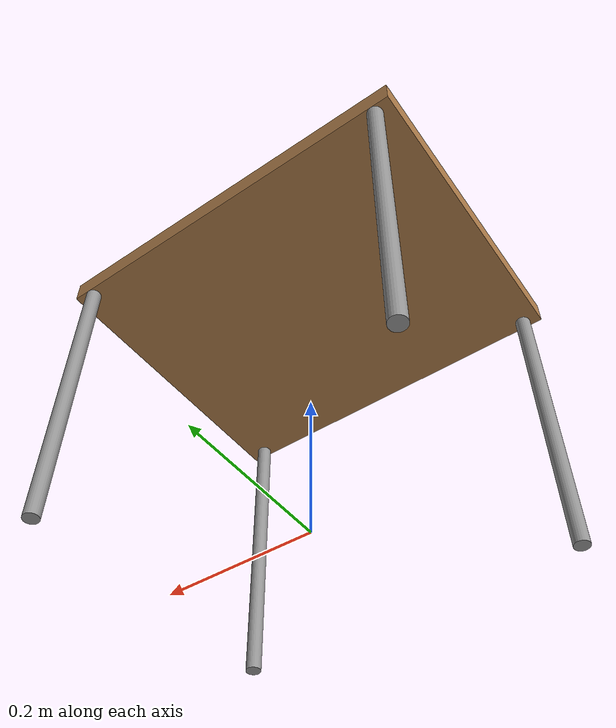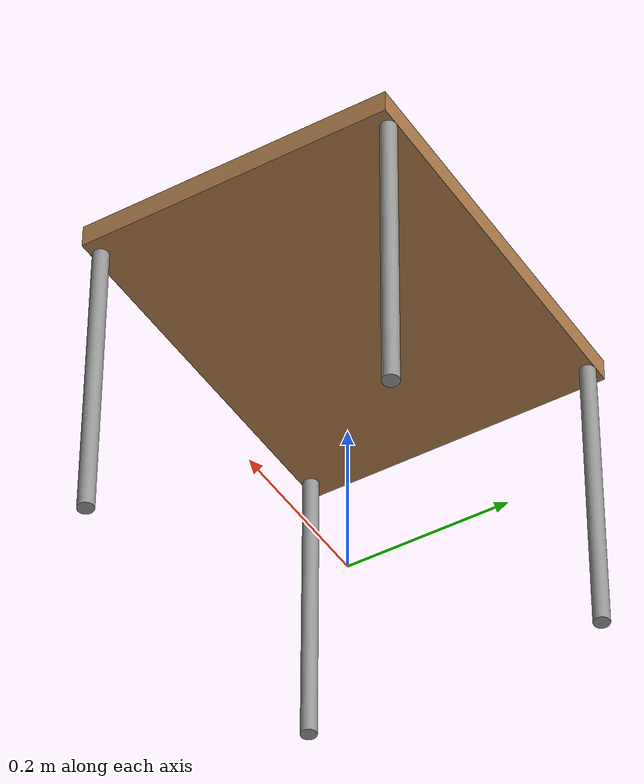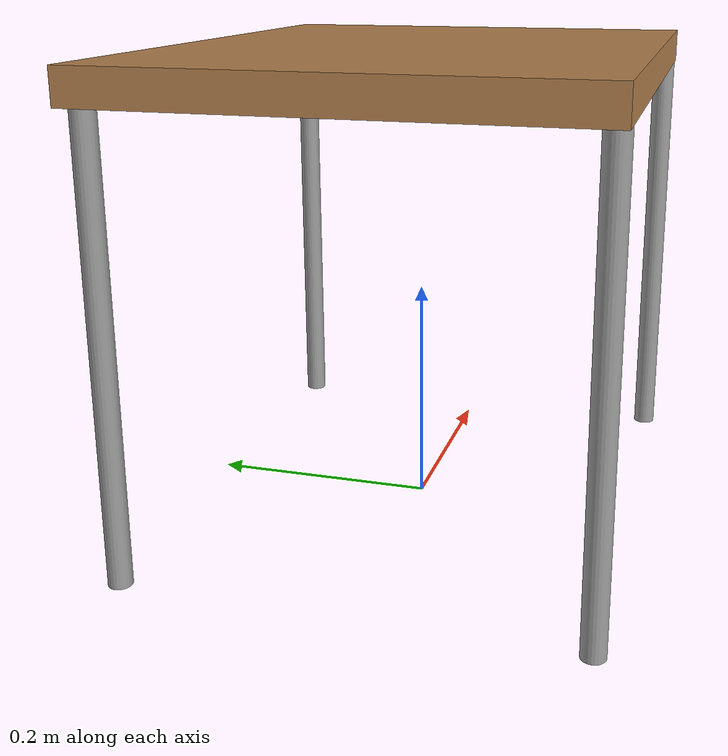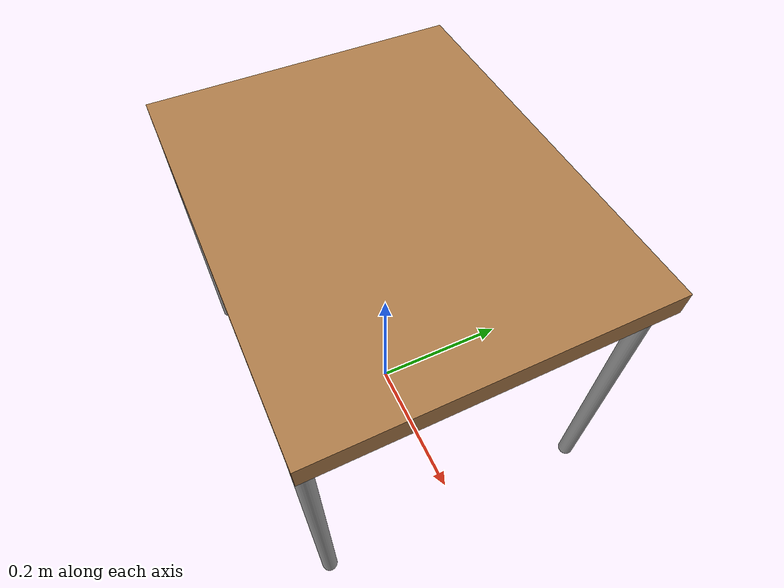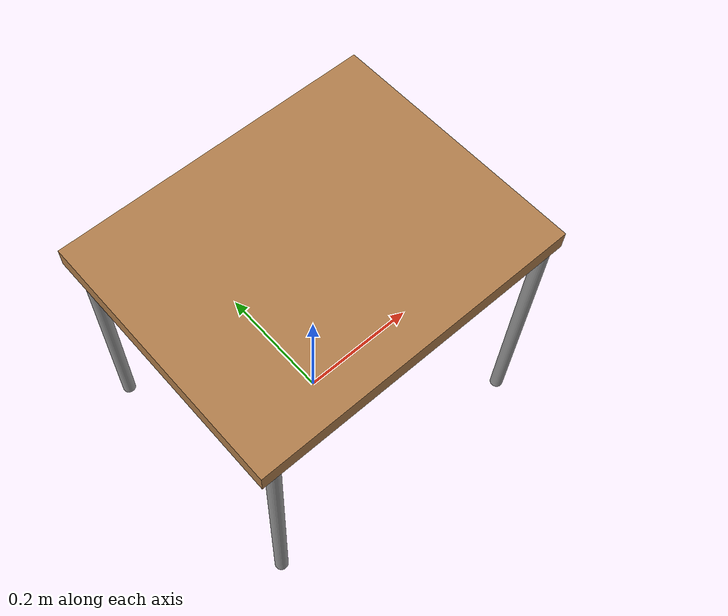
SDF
<?xml version="1.0" ?>
<sdf version="1.5">
  <model name="table_modif">
    <static>true</static>
    <link name="link">
      <collision name="surface">
        <pose>0 0 0.4 0 0 0</pose>
        <geometry>
          <box>
            <size>0.5 0.4 0.03</size>
          </box>
        </geometry>
        <surface>
          <friction>
            <ode>
              <mu>0.6</mu>
              <mu2>0.6</mu2>
            </ode>
          </friction>
        </surface>
      </collision>
      <visual name="visual1">
        <pose>0 0 0.4 0 0 0</pose>
        <geometry>
          <box>
            <size>0.5 0.4 0.03</size>
          </box>
        </geometry>
        <material>
          <script>
            <uri>file://media/materials/scripts/gazebo.material</uri>
            <name>Gazebo/Wood</name>
          </script>
        </material>
      </visual>
      <collision name="front_left_leg">
        <pose>0.2265 0.19 0.2 0 0 0</pose>
        <geometry>
          <cylinder>
            <radius>0.01</radius>
            <length>0.4</length>
          </cylinder>
        </geometry>
      </collision>
      <visual name="front_left_leg">
        <pose>0.2265 0.19 0.2 0 0 0</pose>
        <geometry>
          <cylinder>
            <radius>0.01</radius>
            <length>0.4</length>
          </cylinder>
        </geometry>
        <material>
          <script>
            <uri>file://media/materials/scripts/gazebo.material</uri>
            <name>Gazebo/Grey</name>
          </script>
        </material>
      </visual>
      <collision name="front_right_leg">
        <pose>0.2265 -0.19 0.2 0 0 0</pose>
        <geometry>
          <cylinder>
            <radius>0.01</radius>
            <length>0.4</length>
          </cylinder>
        </geometry>
      </collision>
      <visual name="front_right_leg">
        <pose>0.2265 -0.19 0.2 0 0 0</pose>
        <geometry>
          <cylinder>
            <radius>0.01</radius>
            <length>0.4</length>
          </cylinder>
        </geometry>
        <material>
          <script>
            <uri>file://media/materials/scripts/gazebo.material</uri>
            <name>Gazebo/Grey</name>
          </script>
        </material>
      </visual>
      <collision name="back_right_leg">
        <pose>-0.2265 -0.19 0.20 0 0 0</pose>
        <geometry>
          <cylinder>
            <radius>0.01</radius>
            <length>0.4</length>
          </cylinder>
        </geometry>
      </collision>
      <visual name="back_right_leg">
        <pose>-0.2265 -0.19 0.20 0 0 0</pose>
        <geometry>
          <cylinder>
            <radius>0.01</radius>
            <length>0.4</length>
          </cylinder>
        </geometry>
        <material>
          <script>
            <uri>file://media/materials/scripts/gazebo.material</uri>
            <name>Gazebo/Grey</name>
          </script>
        </material>
      </visual>
      <collision name="back_left_leg">
        <pose>-0.2265 0.19 0.20 0 0 0</pose>
        <geometry>
          <cylinder>
            <radius>0.01</radius>
            <length>0.5</length>
          </cylinder>
        </geometry>
      </collision>
      <visual name="back_left_leg">
        <pose>-0.2265 0.19 0.20 0 0 0</pose>
        <geometry>
          <cylinder>
            <radius>0.01</radius>
            <length>0.4</length>
          </cylinder>
        </geometry>
        <material>
          <script>
            <uri>file://media/materials/scripts/gazebo.material</uri>
            <name>Gazebo/Grey</name>
          </script>
        </material>
      </visual>
    </link>
  </model>
</sdf>
